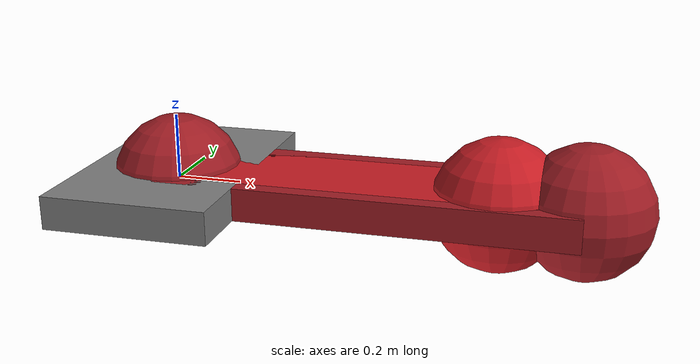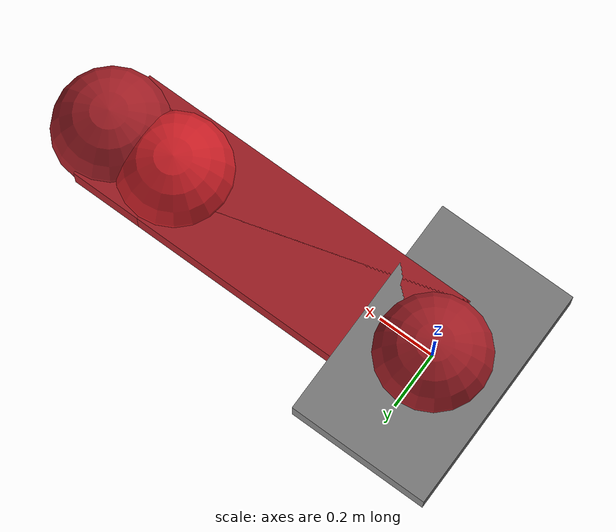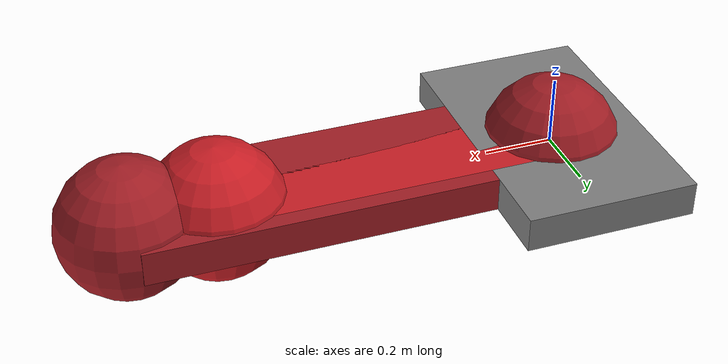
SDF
<?xml version='1.0'?>

<sdf version='1.6'>
  <model name='planar_finger'>
    <link name='link_base'>
      <visual name='palm_visual'>
        <pose>0 0 0 0 0 0</pose>
        <geometry>
          <box>
            <size>0.5 0.8 0.1</size>
          </box>
        </geometry>
        <material>
          <diffuse>0.5 0.5 0.5 0.99</diffuse>
        </material>
      </visual>
    </link>
    <joint name='link_base_to_link_1' type='revolute'>
      <child>link_1</child>
      <parent>link_base</parent>
      <axis>
        <xyz>0 0 1</xyz>
        <dynamics>
          <damping>0</damping>
          <friction>0</friction>
          <spring_reference>0</spring_reference>
          <spring_stiffness>0</spring_stiffness>
        </dynamics>
        <use_parent_model_frame>1</use_parent_model_frame>
      </axis>
    </joint>

    <link name='link_1'>
      <pose>0.0 0 0 0 0 0</pose>
      <inertial>
        <pose>0.5 0 0 0 0 0</pose>
        <mass>1.0</mass>
        <inertia>
          <ixx>1.0</ixx>
          <ixy>0</ixy>
          <ixz>0</ixz>
          <iyy>1.0</iyy>
          <iyz>0</iyz>
          <izz>1.0</izz>
        </inertia>
      </inertial>
      <visual name='link_1_ball_visual_1'>
        <pose>0 0 0 0 0 0</pose>
        <geometry>
          <sphere>
            <radius>0.2</radius>
          </sphere>
        </geometry>
        <material>
          <diffuse>0.64 0.12 0.15 0.99</diffuse>
        </material>
      </visual>
      <visual name='link_1_ball_visual_2'>
        <pose>1.25 0 0 0 0 0</pose>
        <geometry>
          <sphere>
            <radius>0.2</radius>
          </sphere>
        </geometry>
        <material>
          <diffuse>0.64 0.12 0.15 0.99</diffuse>
        </material>
      </visual>
      <visual name='link_1_visual'>
        <pose>0.625 0 0 0 0 0</pose>
        <geometry>
          <box>
            <size>1.25 0.4 0.1</size>
          </box>
        </geometry>
        <material>
          <diffuse>0.64 0.12 0.15 0.99</diffuse>
        </material>
      </visual>
    </link>

    <link name='link_2'>
      <pose>0.0 0 0 0 0 0</pose>
      <inertial>
        <pose>0.5 0 0 0 0 0</pose>
        <mass>1.0</mass>
        <inertia>
          <ixx>1.0</ixx>
          <ixy>0</ixy>
          <ixz>0</ixz>
          <iyy>1.0</iyy>
          <iyz>0</iyz>
          <izz>1.0</izz>
        </inertia>
      </inertial>
      <visual name='link_2_ball_visual_1'>
        <pose>0 0 0 0 0 0</pose>
        <geometry>
          <sphere>
            <radius>0.15</radius>
          </sphere>
        </geometry>
        <material>
          <diffuse>0.8 0.12 0.15 0.99</diffuse>
        </material>
      </visual>
      <visual name='link_2_ball_visual_2'>
        <pose>1.25 0 0 0 0 0</pose>
        <geometry>
          <sphere>
            <radius>0.15</radius>
          </sphere>
        </geometry>
        <material>
          <diffuse>0.8 0.12 0.15 0.99</diffuse>
        </material>
      </visual>
      <visual name='link_2_visual'>
        <pose>0.625 0 0 0 0 0</pose>
        <geometry>
          <box>
            <size>1.25 0.3 0.1</size>
          </box>
        </geometry>
        <material>
          <diffuse>0.8 0.12 0.15 0.99</diffuse>
        </material>
      </visual>
    </link>

    <link name='link_3'>
      <pose>0.0 0 0 0 0 0</pose>
      <inertial>
        <pose>0.5 0 0 0 0 0</pose>
        <mass>1.0</mass>
        <inertia>
          <ixx>1.0</ixx>
          <ixy>0</ixy>
          <ixz>0</ixz>
          <iyy>1.0</iyy>
          <iyz>0</iyz>
          <izz>1.0</izz>
        </inertia>
      </inertial>
      <visual name='link_3_ball_visual'>
        <pose>0 0 0 0 0 0</pose>
        <geometry>
          <sphere>
            <radius>0.2</radius>
          </sphere>
        </geometry>
        <material>
          <diffuse>0.64 0.12 0.15 0.99</diffuse>
        </material>
      </visual>
      <visual name='link_3_visual'>
        <pose>0.5 0 0 0 0 0</pose>
        <geometry>
          <box>
            <size>1.0 0.4 0.1</size>
          </box>
        </geometry>
        <material>
          <diffuse>0.64 0.12 0.15 0.99</diffuse>
        </material>
      </visual>
      <visual name='link_3_tip_visual'>
        <pose>1.0 0 0 0 0 0</pose>
        <geometry>
          <sphere>
            <radius>0.2</radius>
          </sphere>
        </geometry>
        <material>
          <diffuse>0.8 0.12 0.15 0.99</diffuse>
        </material>
      </visual>
      <collision name='link_3_tip_collision'>
        <pose>1.0 0 0 0 0 0</pose>
        <geometry>
          <sphere>
            <radius>0.2</radius>
          </sphere>
        </geometry>
      </collision>
    </link>

    <joint name='link_1_to_link_2' type='revolute'>
      <child>link_2</child>
      <parent>link_1</parent>
      <pose>1.25 0 0 0 0</pose>
      <axis>
        <xyz>0 0 1</xyz>
        <dynamics>
          <damping>0</damping>
          <friction>0</friction>
          <spring_reference>0</spring_reference>
          <spring_stiffness>0</spring_stiffness>
        </dynamics>
        <use_parent_model_frame>1</use_parent_model_frame>
      </axis>
    </joint>

    <joint name='link_2_to_link_3' type='revolute'>
      <child>link_3</child>
      <parent>link_2</parent>
      <pose>0 0 0 0 0 0</pose>
      <axis>
        <xyz>0 0 1</xyz>
        <dynamics>
          <damping>0</damping>
          <friction>0</friction>
          <spring_reference>0</spring_reference>
          <spring_stiffness>0</spring_stiffness>
        </dynamics>
        <use_parent_model_frame>1</use_parent_model_frame>
      </axis>
    </joint>

  </model>
</sdf>
